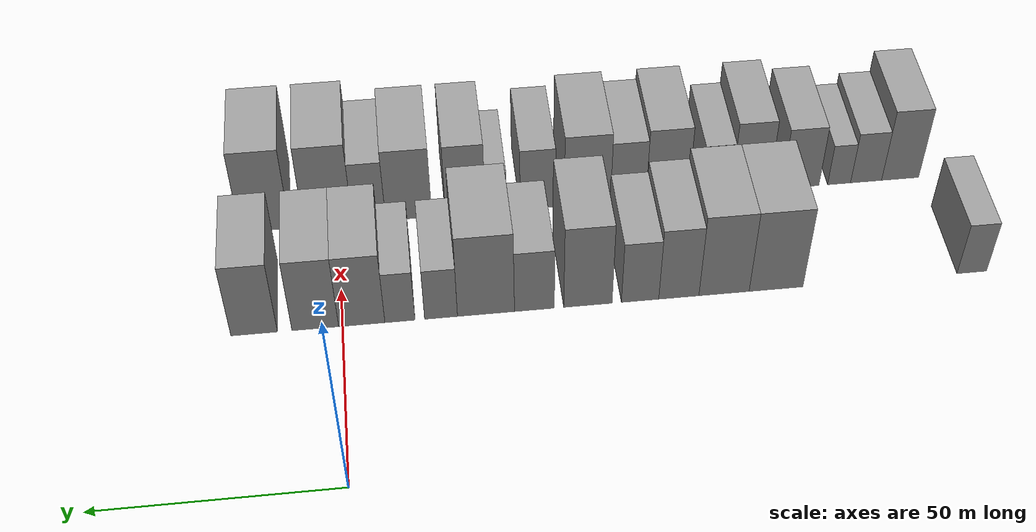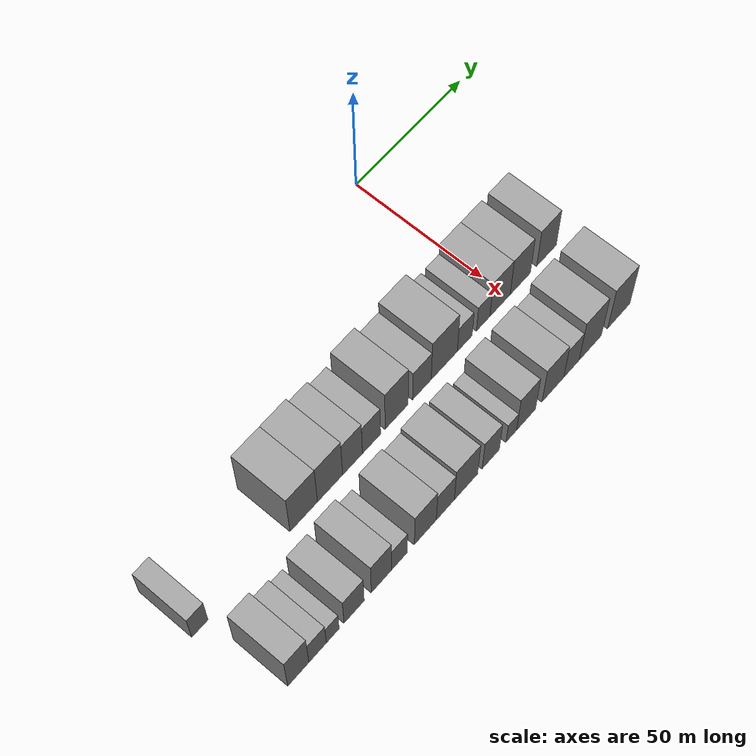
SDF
<sdf version="1.6">
 <world name="default">
  <model name="building_16">
   <static>1</static>
   <pose>50.0000 -134.3034 0 0.000000 0.000000 0.000000</pose>
   <link name="link">
    <pose>0 0 7.50 0 0 0</pose>
    <collision name="collision"><geometry><box><size>20.0000 6.5032 15.0000</size></box></geometry></collision>
    <visual name="visual">
     <cast_shadows>0</cast_shadows>
     <geometry><box><size>20.0000 6.5032 15.0000</size></box></geometry>
     <material>
      <script>
       <uri>model://grey_wall/materials/scripts</uri>
       <uri>model://grey_wall/materials/textures</uri>
       <name>vrc/grey_wall</name>
      </script>
     </material>
    </visual>
   </link>
  </model>
  <model name="building_17">
   <static>1</static>
   <pose>50.0000 -91.6437 0 0.000000 0.000000 0.000000</pose>
   <link name="link">
    <pose>0 0 12.00 0 0 0</pose>
    <collision name="collision"><geometry><box><size>20.0000 11.6054 24.0000</size></box></geometry></collision>
    <visual name="visual">
     <cast_shadows>0</cast_shadows>
     <geometry><box><size>20.0000 11.6054 24.0000</size></box></geometry>
     <material>
      <script>
       <uri>model://grey_wall/materials/scripts</uri>
       <uri>model://grey_wall/materials/textures</uri>
       <name>vrc/grey_wall</name>
      </script>
     </material>
    </visual>
   </link>
  </model>
  <model name="building_18">
   <static>1</static>
   <pose>50.0000 -80.4419 0 0.000000 0.000000 0.000000</pose>
   <link name="link">
    <pose>0 0 12.00 0 0 0</pose>
    <collision name="collision"><geometry><box><size>20.0000 10.7983 24.0000</size></box></geometry></collision>
    <visual name="visual">
     <cast_shadows>0</cast_shadows>
     <geometry><box><size>20.0000 10.7983 24.0000</size></box></geometry>
     <material>
      <script>
       <uri>model://grey_wall/materials/scripts</uri>
       <uri>model://grey_wall/materials/textures</uri>
       <name>vrc/grey_wall</name>
      </script>
     </material>
    </visual>
   </link>
  </model>
  <model name="building_19">
   <static>1</static>
   <pose>50.0000 -70.7479 0 0.000000 0.000000 0.000000</pose>
   <link name="link">
    <pose>0 0 10.50 0 0 0</pose>
    <collision name="collision"><geometry><box><size>20.0000 8.5898 21.0000</size></box></geometry></collision>
    <visual name="visual">
     <cast_shadows>0</cast_shadows>
     <geometry><box><size>20.0000 8.5898 21.0000</size></box></geometry>
     <material>
      <script>
       <uri>model://grey_wall/materials/scripts</uri>
       <uri>model://grey_wall/materials/textures</uri>
       <name>vrc/grey_wall</name>
      </script>
     </material>
    </visual>
   </link>
  </model>
  <model name="building_20">
   <static>1</static>
   <pose>50.0000 -62.4788 0 0.000000 0.000000 0.000000</pose>
   <link name="link">
    <pose>0 0 9.00 0 0 0</pose>
    <collision name="collision"><geometry><box><size>20.0000 7.9483 18.0000</size></box></geometry></collision>
    <visual name="visual">
     <cast_shadows>0</cast_shadows>
     <geometry><box><size>20.0000 7.9483 18.0000</size></box></geometry>
     <material>
      <script>
       <uri>model://grey_wall/materials/scripts</uri>
       <uri>model://grey_wall/materials/textures</uri>
       <name>vrc/grey_wall</name>
      </script>
     </material>
    </visual>
   </link>
  </model>
  <model name="building_21">
   <static>1</static>
   <pose>50.0000 -51.3808 0 0.000000 0.000000 0.000000</pose>
   <link name="link">
    <pose>0 0 12.00 0 0 0</pose>
    <collision name="collision"><geometry><box><size>20.0000 10.2478 24.0000</size></box></geometry></collision>
    <visual name="visual">
     <cast_shadows>0</cast_shadows>
     <geometry><box><size>20.0000 10.2478 24.0000</size></box></geometry>
     <material>
      <script>
       <uri>model://grey_wall/materials/scripts</uri>
       <uri>model://grey_wall/materials/textures</uri>
       <name>vrc/grey_wall</name>
      </script>
     </material>
    </visual>
   </link>
  </model>
  <model name="building_22">
   <static>1</static>
   <pose>50.0000 -40.0598 0 0.000000 0.000000 0.000000</pose>
   <link name="link">
    <pose>0 0 9.00 0 0 0</pose>
    <collision name="collision"><geometry><box><size>20.0000 8.3943 18.0000</size></box></geometry></collision>
    <visual name="visual">
     <cast_shadows>0</cast_shadows>
     <geometry><box><size>20.0000 8.3943 18.0000</size></box></geometry>
     <material>
      <script>
       <uri>model://grey_wall/materials/scripts</uri>
       <uri>model://grey_wall/materials/textures</uri>
       <name>vrc/grey_wall</name>
      </script>
     </material>
    </visual>
   </link>
  </model>
  <model name="building_23">
   <static>1</static>
   <pose>50.0000 -29.8732 0 0.000000 0.000000 0.000000</pose>
   <link name="link">
    <pose>0 0 12.00 0 0 0</pose>
    <collision name="collision"><geometry><box><size>20.0000 11.9789 24.0000</size></box></geometry></collision>
    <visual name="visual">
     <cast_shadows>0</cast_shadows>
     <geometry><box><size>20.0000 11.9789 24.0000</size></box></geometry>
     <material>
      <script>
       <uri>model://grey_wall/materials/scripts</uri>
       <uri>model://grey_wall/materials/textures</uri>
       <name>vrc/grey_wall</name>
      </script>
     </material>
    </visual>
   </link>
  </model>
  <model name="building_24">
   <static>1</static>
   <pose>50.0000 -20.4483 0 0.000000 0.000000 0.000000</pose>
   <link name="link">
    <pose>0 0 7.50 0 0 0</pose>
    <collision name="collision"><geometry><box><size>20.0000 6.8708 15.0000</size></box></geometry></collision>
    <visual name="visual">
     <cast_shadows>0</cast_shadows>
     <geometry><box><size>20.0000 6.8708 15.0000</size></box></geometry>
     <material>
      <script>
       <uri>model://grey_wall/materials/scripts</uri>
       <uri>model://grey_wall/materials/textures</uri>
       <name>vrc/grey_wall</name>
      </script>
     </material>
    </visual>
   </link>
  </model>
  <model name="building_25">
   <static>1</static>
   <pose>50.0000 -11.8697 0 0.000000 0.000000 0.000000</pose>
   <link name="link">
    <pose>0 0 7.50 0 0 0</pose>
    <collision name="collision"><geometry><box><size>20.0000 6.2863 15.0000</size></box></geometry></collision>
    <visual name="visual">
     <cast_shadows>0</cast_shadows>
     <geometry><box><size>20.0000 6.2863 15.0000</size></box></geometry>
     <material>
      <script>
       <uri>model://grey_wall/materials/scripts</uri>
       <uri>model://grey_wall/materials/textures</uri>
       <name>vrc/grey_wall</name>
      </script>
     </material>
    </visual>
   </link>
  </model>
  <model name="building_26">
   <static>1</static>
   <pose>50.0000 -3.9226 0 0.000000 0.000000 0.000000</pose>
   <link name="link">
    <pose>0 0 10.50 0 0 0</pose>
    <collision name="collision"><geometry><box><size>20.0000 9.6079 21.0000</size></box></geometry></collision>
    <visual name="visual">
     <cast_shadows>0</cast_shadows>
     <geometry><box><size>20.0000 9.6079 21.0000</size></box></geometry>
     <material>
      <script>
       <uri>model://grey_wall/materials/scripts</uri>
       <uri>model://grey_wall/materials/textures</uri>
       <name>vrc/grey_wall</name>
      </script>
     </material>
    </visual>
   </link>
  </model>
  <model name="building_27">
   <static>1</static>
   <pose>50.0000 5.7127 0 0.000000 0.000000 0.000000</pose>
   <link name="link">
    <pose>0 0 10.50 0 0 0</pose>
    <collision name="collision"><geometry><box><size>20.0000 9.6628 21.0000</size></box></geometry></collision>
    <visual name="visual">
     <cast_shadows>0</cast_shadows>
     <geometry><box><size>20.0000 9.6628 21.0000</size></box></geometry>
     <material>
      <script>
       <uri>model://grey_wall/materials/scripts</uri>
       <uri>model://grey_wall/materials/textures</uri>
       <name>vrc/grey_wall</name>
      </script>
     </material>
    </visual>
   </link>
  </model>
  <model name="building_28">
   <static>1</static>
   <pose>50.0000 18.3281 0 0.000000 0.000000 0.000000</pose>
   <link name="link">
    <pose>0 0 10.50 0 0 0</pose>
    <collision name="collision"><geometry><box><size>20.0000 9.5679 21.0000</size></box></geometry></collision>
    <visual name="visual">
     <cast_shadows>0</cast_shadows>
     <geometry><box><size>20.0000 9.5679 21.0000</size></box></geometry>
     <material>
      <script>
       <uri>model://grey_wall/materials/scripts</uri>
       <uri>model://grey_wall/materials/textures</uri>
       <name>vrc/grey_wall</name>
      </script>
     </material>
    </visual>
   </link>
  </model>
  <model name="building_72">
   <static>1</static>
   <pose>79.0000 -126.3480 0 0.000000 0.000000 0.000000</pose>
   <link name="link">
    <pose>0 0 10.50 0 0 0</pose>
    <collision name="collision"><geometry><box><size>20.0000 8.5702 21.0000</size></box></geometry></collision>
    <visual name="visual">
     <cast_shadows>0</cast_shadows>
     <geometry><box><size>20.0000 8.5702 21.0000</size></box></geometry>
     <material>
      <script>
       <uri>model://grey_wall/materials/scripts</uri>
       <uri>model://grey_wall/materials/textures</uri>
       <name>vrc/grey_wall</name>
      </script>
     </material>
    </visual>
   </link>
  </model>
  <model name="building_73">
   <static>1</static>
   <pose>79.0000 -118.4875 0 0.000000 0.000000 0.000000</pose>
   <link name="link">
    <pose>0 0 7.50 0 0 0</pose>
    <collision name="collision"><geometry><box><size>20.0000 7.1509 15.0000</size></box></geometry></collision>
    <visual name="visual">
     <cast_shadows>0</cast_shadows>
     <geometry><box><size>20.0000 7.1509 15.0000</size></box></geometry>
     <material>
      <script>
       <uri>model://grey_wall/materials/scripts</uri>
       <uri>model://grey_wall/materials/textures</uri>
       <name>vrc/grey_wall</name>
      </script>
     </material>
    </visual>
   </link>
  </model>
  <model name="building_74">
   <static>1</static>
   <pose>79.0000 -112.2711 0 0.000000 0.000000 0.000000</pose>
   <link name="link">
    <pose>0 0 6.00 0 0 0</pose>
    <collision name="collision"><geometry><box><size>20.0000 5.2819 12.0000</size></box></geometry></collision>
    <visual name="visual">
     <cast_shadows>0</cast_shadows>
     <geometry><box><size>20.0000 5.2819 12.0000</size></box></geometry>
     <material>
      <script>
       <uri>model://grey_wall/materials/scripts</uri>
       <uri>model://grey_wall/materials/textures</uri>
       <name>vrc/grey_wall</name>
      </script>
     </material>
    </visual>
   </link>
  </model>
  <model name="building_75">
   <static>1</static>
   <pose>79.0000 -103.4100 0 0.000000 0.000000 0.000000</pose>
   <link name="link">
    <pose>0 0 9.00 0 0 0</pose>
    <collision name="collision"><geometry><box><size>20.0000 8.4403 18.0000</size></box></geometry></collision>
    <visual name="visual">
     <cast_shadows>0</cast_shadows>
     <geometry><box><size>20.0000 8.4403 18.0000</size></box></geometry>
     <material>
      <script>
       <uri>model://grey_wall/materials/scripts</uri>
       <uri>model://grey_wall/materials/textures</uri>
       <name>vrc/grey_wall</name>
      </script>
     </material>
    </visual>
   </link>
  </model>
  <model name="building_76">
   <static>1</static>
   <pose>79.0000 -91.8898 0 0.000000 0.000000 0.000000</pose>
   <link name="link">
    <pose>0 0 10.50 0 0 0</pose>
    <collision name="collision"><geometry><box><size>20.0000 8.6001 21.0000</size></box></geometry></collision>
    <visual name="visual">
     <cast_shadows>0</cast_shadows>
     <geometry><box><size>20.0000 8.6001 21.0000</size></box></geometry>
     <material>
      <script>
       <uri>model://grey_wall/materials/scripts</uri>
       <uri>model://grey_wall/materials/textures</uri>
       <name>vrc/grey_wall</name>
      </script>
     </material>
    </visual>
   </link>
  </model>
  <model name="building_77">
   <static>1</static>
   <pose>79.0000 -84.2057 0 0.000000 0.000000 0.000000</pose>
   <link name="link">
    <pose>0 0 7.50 0 0 0</pose>
    <collision name="collision"><geometry><box><size>20.0000 6.7681 15.0000</size></box></geometry></collision>
    <visual name="visual">
     <cast_shadows>0</cast_shadows>
     <geometry><box><size>20.0000 6.7681 15.0000</size></box></geometry>
     <material>
      <script>
       <uri>model://grey_wall/materials/scripts</uri>
       <uri>model://grey_wall/materials/textures</uri>
       <name>vrc/grey_wall</name>
      </script>
     </material>
    </visual>
   </link>
  </model>
  <model name="building_78">
   <static>1</static>
   <pose>79.0000 -73.0280 0 0.000000 0.000000 0.000000</pose>
   <link name="link">
    <pose>0 0 10.50 0 0 0</pose>
    <collision name="collision"><geometry><box><size>20.0000 9.5872 21.0000</size></box></geometry></collision>
    <visual name="visual">
     <cast_shadows>0</cast_shadows>
     <geometry><box><size>20.0000 9.5872 21.0000</size></box></geometry>
     <material>
      <script>
       <uri>model://grey_wall/materials/scripts</uri>
       <uri>model://grey_wall/materials/textures</uri>
       <name>vrc/grey_wall</name>
      </script>
     </material>
    </visual>
   </link>
  </model>
  <model name="building_79">
   <static>1</static>
   <pose>79.0000 -64.2512 0 0.000000 0.000000 0.000000</pose>
   <link name="link">
    <pose>0 0 9.00 0 0 0</pose>
    <collision name="collision"><geometry><box><size>20.0000 7.9664 18.0000</size></box></geometry></collision>
    <visual name="visual">
     <cast_shadows>0</cast_shadows>
     <geometry><box><size>20.0000 7.9664 18.0000</size></box></geometry>
     <material>
      <script>
       <uri>model://grey_wall/materials/scripts</uri>
       <uri>model://grey_wall/materials/textures</uri>
       <name>vrc/grey_wall</name>
      </script>
     </material>
    </visual>
   </link>
  </model>
  <model name="building_80">
   <static>1</static>
   <pose>79.0000 -55.0714 0 0.000000 0.000000 0.000000</pose>
   <link name="link">
    <pose>0 0 10.50 0 0 0</pose>
    <collision name="collision"><geometry><box><size>20.0000 10.3932 21.0000</size></box></geometry></collision>
    <visual name="visual">
     <cast_shadows>0</cast_shadows>
     <geometry><box><size>20.0000 10.3932 21.0000</size></box></geometry>
     <material>
      <script>
       <uri>model://grey_wall/materials/scripts</uri>
       <uri>model://grey_wall/materials/textures</uri>
       <name>vrc/grey_wall</name>
      </script>
     </material>
    </visual>
   </link>
  </model>
  <model name="building_81">
   <static>1</static>
   <pose>79.0000 -43.9739 0 0.000000 0.000000 0.000000</pose>
   <link name="link">
    <pose>0 0 9.00 0 0 0</pose>
    <collision name="collision"><geometry><box><size>20.0000 7.8018 18.0000</size></box></geometry></collision>
    <visual name="visual">
     <cast_shadows>0</cast_shadows>
     <geometry><box><size>20.0000 7.8018 18.0000</size></box></geometry>
     <material>
      <script>
       <uri>model://grey_wall/materials/scripts</uri>
       <uri>model://grey_wall/materials/textures</uri>
       <name>vrc/grey_wall</name>
      </script>
     </material>
    </visual>
   </link>
  </model>
  <model name="building_82">
   <static>1</static>
   <pose>79.0000 -34.6672 0 0.000000 0.000000 0.000000</pose>
   <link name="link">
    <pose>0 0 6.00 0 0 0</pose>
    <collision name="collision"><geometry><box><size>20.0000 4.8117 12.0000</size></box></geometry></collision>
    <visual name="visual">
     <cast_shadows>0</cast_shadows>
     <geometry><box><size>20.0000 4.8117 12.0000</size></box></geometry>
     <material>
      <script>
       <uri>model://grey_wall/materials/scripts</uri>
       <uri>model://grey_wall/materials/textures</uri>
       <name>vrc/grey_wall</name>
      </script>
     </material>
    </visual>
   </link>
  </model>
  <model name="building_83">
   <static>1</static>
   <pose>79.0000 -27.8576 0 0.000000 0.000000 0.000000</pose>
   <link name="link">
    <pose>0 0 10.50 0 0 0</pose>
    <collision name="collision"><geometry><box><size>20.0000 8.8075 21.0000</size></box></geometry></collision>
    <visual name="visual">
     <cast_shadows>0</cast_shadows>
     <geometry><box><size>20.0000 8.8075 21.0000</size></box></geometry>
     <material>
      <script>
       <uri>model://grey_wall/materials/scripts</uri>
       <uri>model://grey_wall/materials/textures</uri>
       <name>vrc/grey_wall</name>
      </script>
     </material>
    </visual>
   </link>
  </model>
  <model name="building_84">
   <static>1</static>
   <pose>79.0000 -15.3562 0 0.000000 0.000000 0.000000</pose>
   <link name="link">
    <pose>0 0 10.50 0 0 0</pose>
    <collision name="collision"><geometry><box><size>20.0000 10.1953 21.0000</size></box></geometry></collision>
    <visual name="visual">
     <cast_shadows>0</cast_shadows>
     <geometry><box><size>20.0000 10.1953 21.0000</size></box></geometry>
     <material>
      <script>
       <uri>model://grey_wall/materials/scripts</uri>
       <uri>model://grey_wall/materials/textures</uri>
       <name>vrc/grey_wall</name>
      </script>
     </material>
    </visual>
   </link>
  </model>
  <model name="building_85">
   <static>1</static>
   <pose>79.0000 -6.6185 0 0.000000 0.000000 0.000000</pose>
   <link name="link">
    <pose>0 0 9.00 0 0 0</pose>
    <collision name="collision"><geometry><box><size>20.0000 7.2800 18.0000</size></box></geometry></collision>
    <visual name="visual">
     <cast_shadows>0</cast_shadows>
     <geometry><box><size>20.0000 7.2800 18.0000</size></box></geometry>
     <material>
      <script>
       <uri>model://grey_wall/materials/scripts</uri>
       <uri>model://grey_wall/materials/textures</uri>
       <name>vrc/grey_wall</name>
      </script>
     </material>
    </visual>
   </link>
  </model>
  <model name="building_86">
   <static>1</static>
   <pose>79.0000 2.3873 0 0.000000 0.000000 0.000000</pose>
   <link name="link">
    <pose>0 0 12.00 0 0 0</pose>
    <collision name="collision"><geometry><box><size>20.0000 10.7316 24.0000</size></box></geometry></collision>
    <visual name="visual">
     <cast_shadows>0</cast_shadows>
     <geometry><box><size>20.0000 10.7316 24.0000</size></box></geometry>
     <material>
      <script>
       <uri>model://grey_wall/materials/scripts</uri>
       <uri>model://grey_wall/materials/textures</uri>
       <name>vrc/grey_wall</name>
      </script>
     </material>
    </visual>
   </link>
  </model>
  <model name="building_87">
   <static>1</static>
   <pose>79.0000 16.1922 0 0.000000 0.000000 0.000000</pose>
   <link name="link">
    <pose>0 0 12.00 0 0 0</pose>
    <collision name="collision"><geometry><box><size>20.0000 10.8783 24.0000</size></box></geometry></collision>
    <visual name="visual">
     <cast_shadows>0</cast_shadows>
     <geometry><box><size>20.0000 10.8783 24.0000</size></box></geometry>
     <material>
      <script>
       <uri>model://grey_wall/materials/scripts</uri>
       <uri>model://grey_wall/materials/textures</uri>
       <name>vrc/grey_wall</name>
      </script>
     </material>
    </visual>
   </link>
  </model>
 </world>
</sdf>
